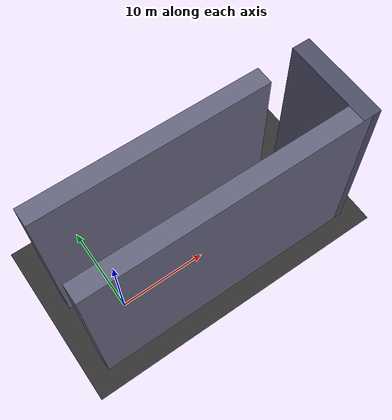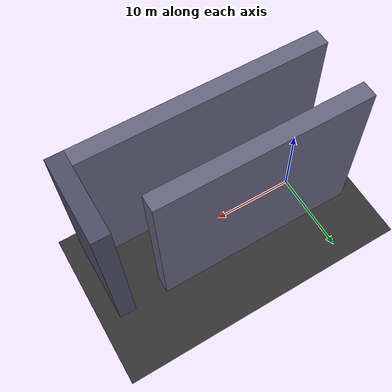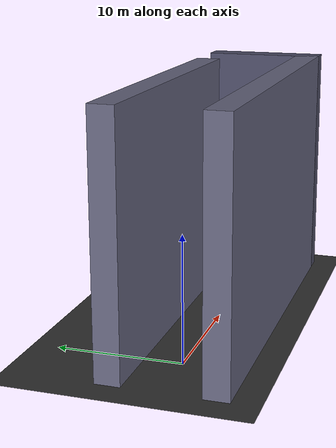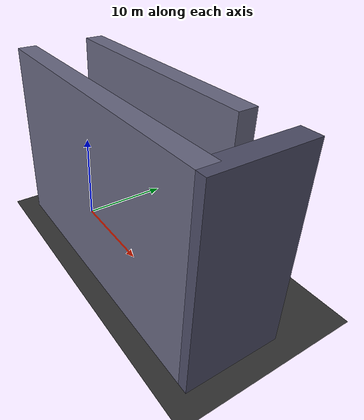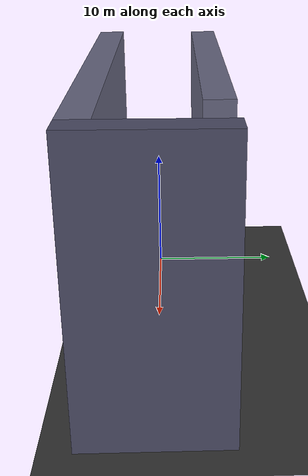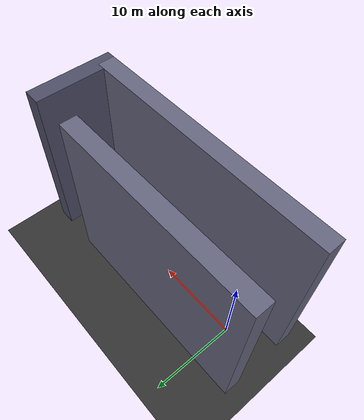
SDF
<?xml version="1.0" ?>
<sdf version="1.8">
  <world name="stratford">
    <physics name="1ms" type="ignored"><max_step_size>0.001</max_step_size><real_time_factor>1.0</real_time_factor></physics>
    <plugin filename="gz-sim-physics-system" name="gz::sim::systems::Physics"/>
    <plugin filename="gz-sim-user-commands-system" name="gz::sim::systems::UserCommands"/>
    <plugin filename="gz-sim-scene-broadcaster-system" name="gz::sim::systems::SceneBroadcaster"/>
    <plugin filename="gz-sim-sensors-system" name="gz::sim::systems::Sensors"><render_engine>ogre2</render_engine></plugin>

    <light type="directional" name="sun"><cast_shadows>true</cast_shadows><pose>0 0 20 0 0 0</pose><direction>-0.5 0.5 -0.9</direction></light>

    <model name="ground"><static>true</static><link name="link"><collision name="collision"><geometry><plane><normal>0 0 1</normal></plane></geometry></collision><visual name="visual"><geometry><plane><normal>0 0 1</normal><size>200 200</size></plane></geometry><material><ambient>0.2 0.2 0.2 1</ambient></material></visual></link></model>

    <model name="building_south"><static>true</static><pose>10 -4 10 0 0 0</pose><link name="link"><collision name="col"><geometry><box><size>30 2 20</size></box></geometry></collision><visual name="vis"><geometry><box><size>30 2 20</size></box></geometry><material><ambient>0.4 0.4 0.5 1</ambient></material></visual></link></model>

    <model name="building_north"><static>true</static><pose>7.5 4 10 0 0 0</pose><link name="link"><collision name="col"><geometry><box><size>25 2 20</size></box></geometry></collision><visual name="vis"><geometry><box><size>25 2 20</size></box></geometry><material><ambient>0.4 0.4 0.5 1</ambient></material></visual></link></model>

    <model name="building_turn"><static>true</static><pose>25 0 10 0 0 0</pose><link name="link"><collision name="col"><geometry><box><size>2 10 20</size></box></geometry></collision><visual name="vis"><geometry><box><size>2 10 20</size></box></geometry><material><ambient>0.3 0.3 0.4 1</ambient></material></visual></link></model>
  </world>
</sdf>
